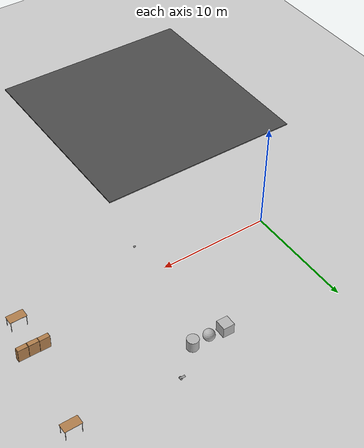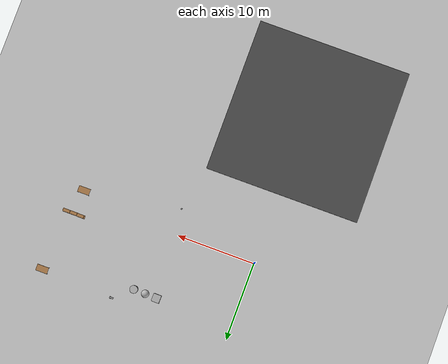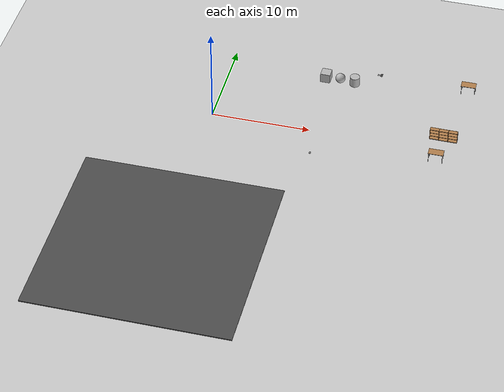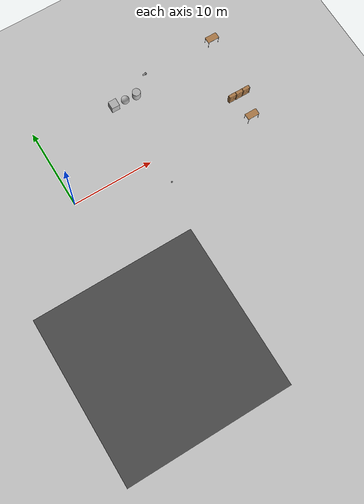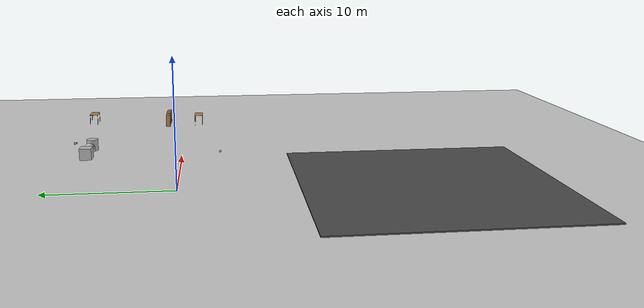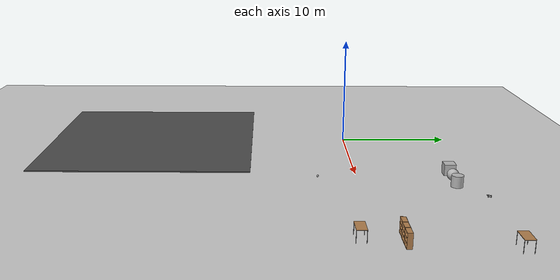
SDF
<sdf version="1.6">
 <world name="default">
  <model name="ground_plane">
   <static>1</static>
   <link name="link">
    <collision name="collision">
     <geometry><plane><normal>0 0 1</normal><size>100 100</size></plane></geometry>
     <surface>
      <contact><collide_bitmask>65535</collide_bitmask></contact>
      <friction><ode><mu>100</mu><mu2>50</mu2></ode></friction>
     </surface>
    </collision>
    <visual name="visual">
     <cast_shadows>0</cast_shadows>
     <geometry><plane><normal>0 0 1</normal><size>100 100</size></plane></geometry>
     <material>
      <script><uri>file://media/materials/scripts/gazebo.material</uri><name>Gazebo/Grey</name></script>
     </material>
    </visual>
   </link>
  </model>
  <model name="bookshelf">
   <static>1</static>
   <link name="link">
    <inertial><mass>1</mass></inertial>
    <collision name="back">
     <pose>0 0.005 0.6 0 -0 0</pose>
     <geometry><box><size>0.9 0.01 1.2</size></box></geometry>
    </collision>
    <visual name="visual1">
     <pose>0 0.005 0.6 0 -0 0</pose>
     <geometry><box><size>0.9 0.01 1.2</size></box></geometry>
     <material>
      <script><uri>file://media/materials/scripts/gazebo.material</uri><name>Gazebo/Wood</name></script>
     </material>
    </visual>
    <collision name="left_side">
     <pose>0.45 -0.195 0.6 0 -0 0</pose>
     <geometry><box><size>0.02 0.4 1.2</size></box></geometry>
    </collision>
    <visual name="visual2">
     <pose>0.45 -0.195 0.6 0 -0 0</pose>
     <geometry><box><size>0.02 0.4 1.2</size></box></geometry>
     <material>
      <script><uri>file://media/materials/scripts/gazebo.material</uri><name>Gazebo/Wood</name></script>
     </material>
    </visual>
    <collision name="right_side">
     <pose>-0.45 -0.195 0.6 0 -0 0</pose>
     <geometry><box><size>0.02 0.4 1.2</size></box></geometry>
    </collision>
    <visual name="visual3">
     <pose>-0.45 -0.195 0.6 0 -0 0</pose>
     <geometry><box><size>0.02 0.4 1.2</size></box></geometry>
     <material>
      <script><uri>file://media/materials/scripts/gazebo.material</uri><name>Gazebo/Wood</name></script>
     </material>
    </visual>
    <collision name="bottom">
     <pose>0 -0.195 0.03 0 -0 0</pose>
     <geometry><box><size>0.88 0.4 0.06</size></box></geometry>
    </collision>
    <visual name="visual4">
     <pose>0 -0.195 0.03 0 -0 0</pose>
     <geometry><box><size>0.88 0.4 0.06</size></box></geometry>
     <material>
      <script><uri>file://media/materials/scripts/gazebo.material</uri><name>Gazebo/Wood</name></script>
     </material>
    </visual>
    <collision name="top">
     <pose>0 -0.195 1.19 0 -0 0</pose>
     <geometry><box><size>0.88 0.4 0.02</size></box></geometry>
    </collision>
    <visual name="visual5">
     <pose>0 -0.195 1.19 0 -0 0</pose>
     <geometry><box><size>0.88 0.4 0.02</size></box></geometry>
     <material>
      <script><uri>file://media/materials/scripts/gazebo.material</uri><name>Gazebo/Wood</name></script>
     </material>
    </visual>
    <collision name="low_shelf">
     <pose>0 -0.195 0.43 0 -0 0</pose>
     <geometry><box><size>0.88 0.4 0.02</size></box></geometry>
    </collision>
    <visual name="visual6">
     <pose>0 -0.195 0.43 0 -0 0</pose>
     <geometry><box><size>0.88 0.4 0.02</size></box></geometry>
     <material>
      <script><uri>file://media/materials/scripts/gazebo.material</uri><name>Gazebo/Wood</name></script>
     </material>
    </visual>
    <collision name="high_shelf">
     <pose>0 -0.195 0.8 0 -0 0</pose>
     <geometry><box><size>0.88 0.4 0.02</size></box></geometry>
    </collision>
    <visual name="visual7">
     <pose>0 -0.195 0.8 0 -0 0</pose>
     <geometry><box><size>0.88 0.4 0.02</size></box></geometry>
     <material>
      <script><uri>file://media/materials/scripts/gazebo.material</uri><name>Gazebo/Wood</name></script>
     </material>
    </visual>
   </link>
   <pose>22.2279 2.02844 0 0 -0 0</pose>
  </model>
  <model name="bookshelf_clone">
   <static>1</static>
   <link name="link">
    <inertial><mass>1</mass></inertial>
    <collision name="back">
     <pose>0 0.005 0.6 0 -0 0</pose>
     <geometry><box><size>0.9 0.01 1.2</size></box></geometry>
    </collision>
    <visual name="visual1">
     <pose>0 0.005 0.6 0 -0 0</pose>
     <geometry><box><size>0.9 0.01 1.2</size></box></geometry>
     <material>
      <script><uri>file://media/materials/scripts/gazebo.material</uri><name>Gazebo/Wood</name></script>
     </material>
    </visual>
    <collision name="left_side">
     <pose>0.45 -0.195 0.6 0 -0 0</pose>
     <geometry><box><size>0.02 0.4 1.2</size></box></geometry>
    </collision>
    <visual name="visual2">
     <pose>0.45 -0.195 0.6 0 -0 0</pose>
     <geometry><box><size>0.02 0.4 1.2</size></box></geometry>
     <material>
      <script><uri>file://media/materials/scripts/gazebo.material</uri><name>Gazebo/Wood</name></script>
     </material>
    </visual>
    <collision name="right_side">
     <pose>-0.45 -0.195 0.6 0 -0 0</pose>
     <geometry><box><size>0.02 0.4 1.2</size></box></geometry>
    </collision>
    <visual name="visual3">
     <pose>-0.45 -0.195 0.6 0 -0 0</pose>
     <geometry><box><size>0.02 0.4 1.2</size></box></geometry>
     <material>
      <script><uri>file://media/materials/scripts/gazebo.material</uri><name>Gazebo/Wood</name></script>
     </material>
    </visual>
    <collision name="bottom">
     <pose>0 -0.195 0.03 0 -0 0</pose>
     <geometry><box><size>0.88 0.4 0.06</size></box></geometry>
    </collision>
    <visual name="visual4">
     <pose>0 -0.195 0.03 0 -0 0</pose>
     <geometry><box><size>0.88 0.4 0.06</size></box></geometry>
     <material>
      <script><uri>file://media/materials/scripts/gazebo.material</uri><name>Gazebo/Wood</name></script>
     </material>
    </visual>
    <collision name="top">
     <pose>0 -0.195 1.19 0 -0 0</pose>
     <geometry><box><size>0.88 0.4 0.02</size></box></geometry>
    </collision>
    <visual name="visual5">
     <pose>0 -0.195 1.19 0 -0 0</pose>
     <geometry><box><size>0.88 0.4 0.02</size></box></geometry>
     <material>
      <script><uri>file://media/materials/scripts/gazebo.material</uri><name>Gazebo/Wood</name></script>
     </material>
    </visual>
    <collision name="low_shelf">
     <pose>0 -0.195 0.43 0 -0 0</pose>
     <geometry><box><size>0.88 0.4 0.02</size></box></geometry>
    </collision>
    <visual name="visual6">
     <pose>0 -0.195 0.43 0 -0 0</pose>
     <geometry><box><size>0.88 0.4 0.02</size></box></geometry>
     <material>
      <script><uri>file://media/materials/scripts/gazebo.material</uri><name>Gazebo/Wood</name></script>
     </material>
    </visual>
    <collision name="high_shelf">
     <pose>0 -0.195 0.8 0 -0 0</pose>
     <geometry><box><size>0.88 0.4 0.02</size></box></geometry>
    </collision>
    <visual name="visual7">
     <pose>0 -0.195 0.8 0 -0 0</pose>
     <geometry><box><size>0.88 0.4 0.02</size></box></geometry>
     <material>
      <script><uri>file://media/materials/scripts/gazebo.material</uri><name>Gazebo/Wood</name></script>
     </material>
    </visual>
   </link>
   <pose>23.1399 2.00474 0 0 -0 0</pose>
  </model>
  <model name="bookshelf_clone_0">
   <static>1</static>
   <link name="link">
    <inertial><mass>1</mass></inertial>
    <collision name="back">
     <pose>0 0.005 0.6 0 -0 0</pose>
     <geometry><box><size>0.9 0.01 1.2</size></box></geometry>
    </collision>
    <visual name="visual1">
     <pose>0 0.005 0.6 0 -0 0</pose>
     <geometry><box><size>0.9 0.01 1.2</size></box></geometry>
     <material>
      <script><uri>file://media/materials/scripts/gazebo.material</uri><name>Gazebo/Wood</name></script>
     </material>
    </visual>
    <collision name="left_side">
     <pose>0.45 -0.195 0.6 0 -0 0</pose>
     <geometry><box><size>0.02 0.4 1.2</size></box></geometry>
    </collision>
    <visual name="visual2">
     <pose>0.45 -0.195 0.6 0 -0 0</pose>
     <geometry><box><size>0.02 0.4 1.2</size></box></geometry>
     <material>
      <script><uri>file://media/materials/scripts/gazebo.material</uri><name>Gazebo/Wood</name></script>
     </material>
    </visual>
    <collision name="right_side">
     <pose>-0.45 -0.195 0.6 0 -0 0</pose>
     <geometry><box><size>0.02 0.4 1.2</size></box></geometry>
    </collision>
    <visual name="visual3">
     <pose>-0.45 -0.195 0.6 0 -0 0</pose>
     <geometry><box><size>0.02 0.4 1.2</size></box></geometry>
     <material>
      <script><uri>file://media/materials/scripts/gazebo.material</uri><name>Gazebo/Wood</name></script>
     </material>
    </visual>
    <collision name="bottom">
     <pose>0 -0.195 0.03 0 -0 0</pose>
     <geometry><box><size>0.88 0.4 0.06</size></box></geometry>
    </collision>
    <visual name="visual4">
     <pose>0 -0.195 0.03 0 -0 0</pose>
     <geometry><box><size>0.88 0.4 0.06</size></box></geometry>
     <material>
      <script><uri>file://media/materials/scripts/gazebo.material</uri><name>Gazebo/Wood</name></script>
     </material>
    </visual>
    <collision name="top">
     <pose>0 -0.195 1.19 0 -0 0</pose>
     <geometry><box><size>0.88 0.4 0.02</size></box></geometry>
    </collision>
    <visual name="visual5">
     <pose>0 -0.195 1.19 0 -0 0</pose>
     <geometry><box><size>0.88 0.4 0.02</size></box></geometry>
     <material>
      <script><uri>file://media/materials/scripts/gazebo.material</uri><name>Gazebo/Wood</name></script>
     </material>
    </visual>
    <collision name="low_shelf">
     <pose>0 -0.195 0.43 0 -0 0</pose>
     <geometry><box><size>0.88 0.4 0.02</size></box></geometry>
    </collision>
    <visual name="visual6">
     <pose>0 -0.195 0.43 0 -0 0</pose>
     <geometry><box><size>0.88 0.4 0.02</size></box></geometry>
     <material>
      <script><uri>file://media/materials/scripts/gazebo.material</uri><name>Gazebo/Wood</name></script>
     </material>
    </visual>
    <collision name="high_shelf">
     <pose>0 -0.195 0.8 0 -0 0</pose>
     <geometry><box><size>0.88 0.4 0.02</size></box></geometry>
    </collision>
    <visual name="visual7">
     <pose>0 -0.195 0.8 0 -0 0</pose>
     <geometry><box><size>0.88 0.4 0.02</size></box></geometry>
     <material>
      <script><uri>file://media/materials/scripts/gazebo.material</uri><name>Gazebo/Wood</name></script>
     </material>
    </visual>
   </link>
   <pose>24.0683 2.00615 0 0 -0 0</pose>
  </model>
  <model name="asphalt_plane">
   <static>1</static>
   <link name="link">
    <collision name="collision"><geometry><box><size>20 20 0.1</size></box></geometry></collision>
    <visual name="visual">
     <cast_shadows>0</cast_shadows>
     <geometry><box><size>20 20 0.1</size></box></geometry>
     <material>
      <script>
       <uri>model://asphalt_plane/materials/scripts</uri>
       <uri>model://asphalt_plane/materials/textures</uri>
       <name>vrc/asphalt</name>
      </script>
     </material>
    </visual>
   </link>
   <pose>-0.35184 -19.1986 0 0 -0 0</pose>
  </model>
  <model name="textured_shapes">
   <pose>11.3674 8.11183 0.5 0 -0 -1.59435</pose>
   <link name="box">
    <pose>0 -1.5 0 0 -0 0</pose>
    <collision name="collision"><geometry><box><size>1 1 1</size></box></geometry></collision>
    <visual name="visual">
     <geometry><box><size>1 1 1</size></box></geometry>
     <material>
      <script>
       <uri>model://textured_shapes/materials/scripts</uri>
       <uri>model://textured_shapes/materials/textures</uri>
       <name>TexturedShape/Squares</name>
      </script>
     </material>
    </visual>
    <inertial>
     <inertia><ixx>1</ixx><ixy>0</ixy><ixz>0</ixz><iyy>1</iyy><iyz>0</iyz><izz>1</izz></inertia>
     <mass>1</mass>
    </inertial>
   </link>
   <link name="sphere">
    <collision name="collision"><geometry><sphere><radius>0.5</radius></sphere></geometry></collision>
    <visual name="visual">
     <geometry><sphere><radius>0.5</radius></sphere></geometry>
     <material>
      <script>
       <uri>model://textured_shapes/materials/scripts</uri>
       <uri>model://textured_shapes/materials/textures</uri>
       <name>TexturedShape/Squares</name>
      </script>
     </material>
    </visual>
    <inertial>
     <inertia><ixx>1</ixx><ixy>0</ixy><ixz>0</ixz><iyy>1</iyy><iyz>0</iyz><izz>1</izz></inertia>
     <mass>1</mass>
    </inertial>
   </link>
   <link name="cylinder">
    <pose>0 1.5 0 0 -0 0</pose>
    <collision name="collision">
     <geometry><cylinder><radius>0.5</radius><length>1</length></cylinder></geometry>
    </collision>
    <visual name="visual">
     <geometry><cylinder><radius>0.5</radius><length>1</length></cylinder></geometry>
     <material>
      <script>
       <uri>model://textured_shapes/materials/scripts</uri>
       <uri>model://textured_shapes/materials/textures</uri>
       <name>TexturedShape/Squares</name>
      </script>
     </material>
    </visual>
    <inertial>
     <inertia><ixx>1</ixx><ixy>0</ixy><ixz>0</ixz><iyy>1</iyy><iyz>0</iyz><izz>1</izz></inertia>
     <mass>1</mass>
    </inertial>
   </link>
  </model>
  <model name="table">
   <static>1</static>
   <link name="link">
    <collision name="surface">
     <pose>0 0 1 0 -0 0</pose>
     <geometry><box><size>1.5 0.8 0.03</size></box></geometry>
     <surface><friction><ode><mu>0.6</mu><mu2>0.6</mu2></ode></friction></surface>
    </collision>
    <visual name="visual1">
     <pose>0 0 1 0 -0 0</pose>
     <geometry><box><size>1.5 0.8 0.03</size></box></geometry>
     <material>
      <script><uri>file://media/materials/scripts/gazebo.material</uri><name>Gazebo/Wood</name></script>
     </material>
    </visual>
    <collision name="front_left_leg">
     <pose>0.68 0.38 0.5 0 -0 0</pose>
     <geometry><cylinder><radius>0.02</radius><length>1</length></cylinder></geometry>
    </collision>
    <visual name="front_left_leg">
     <pose>0.68 0.38 0.5 0 -0 0</pose>
     <geometry><cylinder><radius>0.02</radius><length>1</length></cylinder></geometry>
     <material>
      <script><uri>file://media/materials/scripts/gazebo.material</uri><name>Gazebo/Grey</name></script>
     </material>
    </visual>
    <collision name="front_right_leg">
     <pose>0.68 -0.38 0.5 0 -0 0</pose>
     <geometry><cylinder><radius>0.02</radius><length>1</length></cylinder></geometry>
    </collision>
    <visual name="front_right_leg">
     <pose>0.68 -0.38 0.5 0 -0 0</pose>
     <geometry><cylinder><radius>0.02</radius><length>1</length></cylinder></geometry>
     <material>
      <script><uri>file://media/materials/scripts/gazebo.material</uri><name>Gazebo/Grey</name></script>
     </material>
    </visual>
    <collision name="back_right_leg">
     <pose>-0.68 -0.38 0.5 0 -0 0</pose>
     <geometry><cylinder><radius>0.02</radius><length>1</length></cylinder></geometry>
    </collision>
    <visual name="back_right_leg">
     <pose>-0.68 -0.38 0.5 0 -0 0</pose>
     <geometry><cylinder><radius>0.02</radius><length>1</length></cylinder></geometry>
     <material>
      <script><uri>file://media/materials/scripts/gazebo.material</uri><name>Gazebo/Grey</name></script>
     </material>
    </visual>
    <collision name="back_left_leg">
     <pose>-0.68 0.38 0.5 0 -0 0</pose>
     <geometry><cylinder><radius>0.02</radius><length>1</length></cylinder></geometry>
    </collision>
    <visual name="back_left_leg">
     <pose>-0.68 0.38 0.5 0 -0 0</pose>
     <geometry><cylinder><radius>0.02</radius><length>1</length></cylinder></geometry>
     <material>
      <script><uri>file://media/materials/scripts/gazebo.material</uri><name>Gazebo/Grey</name></script>
     </material>
    </visual>
   </link>
   <pose>24.3321 9.59008 0 0 -0 0</pose>
  </model>
  <model name="table_clone">
   <static>1</static>
   <link name="link">
    <collision name="surface">
     <pose>0 0 1 0 -0 0</pose>
     <geometry><box><size>1.5 0.8 0.03</size></box></geometry>
     <surface><friction><ode><mu>0.6</mu><mu2>0.6</mu2></ode></friction></surface>
    </collision>
    <visual name="visual1">
     <pose>0 0 1 0 -0 0</pose>
     <geometry><box><size>1.5 0.8 0.03</size></box></geometry>
     <material>
      <script><uri>file://media/materials/scripts/gazebo.material</uri><name>Gazebo/Wood</name></script>
     </material>
    </visual>
    <collision name="front_left_leg">
     <pose>0.68 0.38 0.5 0 -0 0</pose>
     <geometry><cylinder><radius>0.02</radius><length>1</length></cylinder></geometry>
    </collision>
    <visual name="front_left_leg">
     <pose>0.68 0.38 0.5 0 -0 0</pose>
     <geometry><cylinder><radius>0.02</radius><length>1</length></cylinder></geometry>
     <material>
      <script><uri>file://media/materials/scripts/gazebo.material</uri><name>Gazebo/Grey</name></script>
     </material>
    </visual>
    <collision name="front_right_leg">
     <pose>0.68 -0.38 0.5 0 -0 0</pose>
     <geometry><cylinder><radius>0.02</radius><length>1</length></cylinder></geometry>
    </collision>
    <visual name="front_right_leg">
     <pose>0.68 -0.38 0.5 0 -0 0</pose>
     <geometry><cylinder><radius>0.02</radius><length>1</length></cylinder></geometry>
     <material>
      <script><uri>file://media/materials/scripts/gazebo.material</uri><name>Gazebo/Grey</name></script>
     </material>
    </visual>
    <collision name="back_right_leg">
     <pose>-0.68 -0.38 0.5 0 -0 0</pose>
     <geometry><cylinder><radius>0.02</radius><length>1</length></cylinder></geometry>
    </collision>
    <visual name="back_right_leg">
     <pose>-0.68 -0.38 0.5 0 -0 0</pose>
     <geometry><cylinder><radius>0.02</radius><length>1</length></cylinder></geometry>
     <material>
      <script><uri>file://media/materials/scripts/gazebo.material</uri><name>Gazebo/Grey</name></script>
     </material>
    </visual>
    <collision name="back_left_leg">
     <pose>-0.68 0.38 0.5 0 -0 0</pose>
     <geometry><cylinder><radius>0.02</radius><length>1</length></cylinder></geometry>
    </collision>
    <visual name="back_left_leg">
     <pose>-0.68 0.38 0.5 0 -0 0</pose>
     <geometry><cylinder><radius>0.02</radius><length>1</length></cylinder></geometry>
     <material>
      <script><uri>file://media/materials/scripts/gazebo.material</uri><name>Gazebo/Grey</name></script>
     </material>
    </visual>
   </link>
   <pose>22.9231 -1.27936 0 0 -0 0</pose>
  </model>
  <model name="BaseModel_0">
   <link name="link_0_clone">
    <inertial>
     <mass>1</mass>
     <inertia><ixx>0.145833</ixx><ixy>0</ixy><ixz>0</ixz><iyy>0.145833</iyy><iyz>0</iyz><izz>0.125</izz></inertia>
    </inertial>
    <pose>0.282441 0.145774 0.01125 1.57 -0 0</pose>
    <visual name="visual">
     <geometry><cylinder><radius>0.1</radius><length>0.025</length></cylinder></geometry>
     <material>
      <lighting>1</lighting>
      <script><uri>file://media/materials/scripts/gazebo.material</uri><name>Gazebo/Grey</name></script>
      <shader type="pixel"><normal_map>__default__</normal_map></shader>
      <ambient>0.3 0.3 0.3 1</ambient>
      <diffuse>0.7 0.7 0.7 1</diffuse>
      <specular>0.01 0.01 0.01 1</specular>
      <emissive>0 0 0 1</emissive>
     </material>
    </visual>
    <collision name="collision">
     <geometry><cylinder><radius>0.1</radius><length>0.025</length></cylinder></geometry>
     <surface>
      <friction>
       <ode><mu>1</mu><mu2>1</mu2><fdir1>0 0 0</fdir1><slip1>0</slip1><slip2>0</slip2></ode>
       <torsional>
        <coefficient>1</coefficient>
        <patch_radius>0</patch_radius>
        <surface_radius>0</surface_radius>
        <use_patch_radius>1</use_patch_radius>
        <ode><slip>0</slip></ode>
       </torsional>
      </friction>
      <bounce><restitution_coefficient>0</restitution_coefficient><threshold>1e+06</threshold></bounce>
      <contact>
       <collide_without_contact>0</collide_without_contact>
       <collide_without_contact_bitmask>1</collide_without_contact_bitmask>
       <collide_bitmask>1</collide_bitmask>
       <ode>
        <soft_cfm>0</soft_cfm>
        <soft_erp>0.2</soft_erp>
        <kp>1e+13</kp>
        <kd>1</kd>
        <max_vel>0.01</max_vel>
        <min_depth>0</min_depth>
       </ode>
       <bullet>
        <split_impulse>1</split_impulse>
        <split_impulse_penetration_threshold>-0.01</split_impulse_penetration_threshold>
        <soft_cfm>0</soft_cfm>
        <soft_erp>0.2</soft_erp>
        <kp>1e+13</kp>
        <kd>1</kd>
       </bullet>
      </contact>
     </surface>
    </collision>
   </link>
   <link name="link_0_clone_0">
    <inertial>
     <mass>1</mass>
     <inertia><ixx>0.145833</ixx><ixy>0</ixy><ixz>0</ixz><iyy>0.145833</iyy><iyz>0</iyz><izz>0.125</izz></inertia>
    </inertial>
    <pose>0.282441 0.370933 0.01125 1.57 -0 0</pose>
    <visual name="visual">
     <geometry><cylinder><radius>0.1</radius><length>0.025</length></cylinder></geometry>
     <material>
      <lighting>1</lighting>
      <script><uri>file://media/materials/scripts/gazebo.material</uri><name>Gazebo/Grey</name></script>
      <shader type="pixel"><normal_map>__default__</normal_map></shader>
      <ambient>0.3 0.3 0.3 1</ambient>
      <diffuse>0.7 0.7 0.7 1</diffuse>
      <specular>0.01 0.01 0.01 1</specular>
      <emissive>0 0 0 1</emissive>
     </material>
    </visual>
    <collision name="collision">
     <geometry><cylinder><radius>0.1</radius><length>0.025</length></cylinder></geometry>
     <surface>
      <friction>
       <ode><mu>1</mu><mu2>1</mu2><fdir1>0 0 0</fdir1><slip1>0</slip1><slip2>0</slip2></ode>
       <torsional>
        <coefficient>1</coefficient>
        <patch_radius>0</patch_radius>
        <surface_radius>0</surface_radius>
        <use_patch_radius>1</use_patch_radius>
        <ode><slip>0</slip></ode>
       </torsional>
      </friction>
      <bounce><restitution_coefficient>0</restitution_coefficient><threshold>1e+06</threshold></bounce>
      <contact>
       <collide_without_contact>0</collide_without_contact>
       <collide_without_contact_bitmask>1</collide_without_contact_bitmask>
       <collide_bitmask>1</collide_bitmask>
       <ode>
        <soft_cfm>0</soft_cfm>
        <soft_erp>0.2</soft_erp>
        <kp>1e+13</kp>
        <kd>1</kd>
        <max_vel>0.01</max_vel>
        <min_depth>0</min_depth>
       </ode>
       <bullet>
        <split_impulse>1</split_impulse>
        <split_impulse_penetration_threshold>-0.01</split_impulse_penetration_threshold>
        <soft_cfm>0</soft_cfm>
        <soft_erp>0.2</soft_erp>
        <kp>1e+13</kp>
        <kd>1</kd>
       </bullet>
      </contact>
     </surface>
    </collision>
   </link>
   <link name="link_1_clone">
    <inertial>
     <mass>1</mass>
     <inertia><ixx>0.1</ixx><ixy>0</ixy><ixz>0</ixz><iyy>0.1</iyy><iyz>0</iyz><izz>0.1</izz></inertia>
    </inertial>
    <pose>-0.077559 0.258354 -0.03375 0 -0 0</pose>
    <visual name="visual">
     <geometry><sphere><radius>0.04</radius></sphere></geometry>
     <material>
      <lighting>1</lighting>
      <script><uri>file://media/materials/scripts/gazebo.material</uri><name>Gazebo/Grey</name></script>
      <shader type="pixel"><normal_map>__default__</normal_map></shader>
      <ambient>0.3 0.3 0.3 1</ambient>
      <diffuse>0.7 0.7 0.7 1</diffuse>
      <specular>0.01 0.01 0.01 1</specular>
      <emissive>0 0 0 1</emissive>
     </material>
    </visual>
    <collision name="collision">
     <geometry><sphere><radius>0.04</radius></sphere></geometry>
     <surface>
      <friction>
       <ode><mu>1</mu><mu2>1</mu2><fdir1>0 0 0</fdir1><slip1>0</slip1><slip2>0</slip2></ode>
       <torsional>
        <coefficient>1</coefficient>
        <patch_radius>0</patch_radius>
        <surface_radius>0</surface_radius>
        <use_patch_radius>1</use_patch_radius>
        <ode><slip>0</slip></ode>
       </torsional>
      </friction>
      <bounce><restitution_coefficient>0</restitution_coefficient><threshold>1e+06</threshold></bounce>
      <contact>
       <collide_without_contact>0</collide_without_contact>
       <collide_without_contact_bitmask>1</collide_without_contact_bitmask>
       <collide_bitmask>1</collide_bitmask>
       <ode>
        <soft_cfm>0</soft_cfm>
        <soft_erp>0.2</soft_erp>
        <kp>1e+13</kp>
        <kd>1</kd>
        <max_vel>0.01</max_vel>
        <min_depth>0</min_depth>
       </ode>
       <bullet>
        <split_impulse>1</split_impulse>
        <split_impulse_penetration_threshold>-0.01</split_impulse_penetration_threshold>
        <soft_cfm>0</soft_cfm>
        <soft_erp>0.2</soft_erp>
        <kp>1e+13</kp>
        <kd>1</kd>
       </bullet>
      </contact>
     </surface>
    </collision>
   </link>
   <link name="link_2_clone">
    <inertial>
     <mass>1</mass>
     <inertia>
      <ixx>0.166667</ixx>
      <ixy>0</ixy>
      <ixz>0</ixz>
      <iyy>0.166667</iyy>
      <iyz>0</iyz>
      <izz>0.166667</izz>
     </inertia>
    </inertial>
    <pose>0.132441 0.258354 0.01125 0 -0 0</pose>
    <visual name="visual">
     <geometry><box><size>0.5 0.2 0.01</size></box></geometry>
     <material>
      <lighting>1</lighting>
      <script><uri>file://media/materials/scripts/gazebo.material</uri><name>Gazebo/Grey</name></script>
      <shader type="pixel"><normal_map>__default__</normal_map></shader>
      <ambient>0.3 0.3 0.3 1</ambient>
      <diffuse>0.7 0.7 0.7 1</diffuse>
      <specular>0.01 0.01 0.01 1</specular>
      <emissive>0 0 0 1</emissive>
     </material>
    </visual>
    <collision name="collision">
     <geometry><box><size>0.5 0.2 0.01</size></box></geometry>
     <surface>
      <friction>
       <ode><mu>1</mu><mu2>1</mu2><fdir1>0 0 0</fdir1><slip1>0</slip1><slip2>0</slip2></ode>
       <torsional>
        <coefficient>1</coefficient>
        <patch_radius>0</patch_radius>
        <surface_radius>0</surface_radius>
        <use_patch_radius>1</use_patch_radius>
        <ode><slip>0</slip></ode>
       </torsional>
      </friction>
      <bounce><restitution_coefficient>0</restitution_coefficient><threshold>1e+06</threshold></bounce>
      <contact>
       <collide_without_contact>0</collide_without_contact>
       <collide_without_contact_bitmask>1</collide_without_contact_bitmask>
       <collide_bitmask>1</collide_bitmask>
       <ode>
        <soft_cfm>0</soft_cfm>
        <soft_erp>0.2</soft_erp>
        <kp>1e+13</kp>
        <kd>1</kd>
        <max_vel>0.01</max_vel>
        <min_depth>0</min_depth>
       </ode>
       <bullet>
        <split_impulse>1</split_impulse>
        <split_impulse_penetration_threshold>-0.01</split_impulse_penetration_threshold>
        <soft_cfm>0</soft_cfm>
        <soft_erp>0.2</soft_erp>
        <kp>1e+13</kp>
        <kd>1</kd>
       </bullet>
      </contact>
     </surface>
    </collision>
   </link>
   <joint name="link_2_clone_JOINT_0" type="revolute">
    <parent>link_2_clone</parent>
    <child>link_0_clone_0</child>
    <axis>
     <xyz>1 0 0</xyz>
     <use_parent_model_frame>0</use_parent_model_frame>
     <limit>
      <lower>-1.79769e+308</lower>
      <upper>1.79769e+308</upper>
      <effort>-1</effort>
      <velocity>-1</velocity>
     </limit>
     <dynamics>
      <spring_reference>0</spring_reference>
      <spring_stiffness>0</spring_stiffness>
      <damping>0</damping>
     </dynamics>
    </axis>
    <physics>
     <ode><limit><cfm>0</cfm><erp>0.2</erp></limit><suspension><cfm>0</cfm><erp>0.2</erp></suspension></ode>
    </physics>
   </joint>
   <joint name="link_2_clone_JOINT_1" type="revolute">
    <parent>link_2_clone</parent>
    <child>link_0_clone</child>
    <axis>
     <xyz>1 0 0</xyz>
     <use_parent_model_frame>0</use_parent_model_frame>
     <limit>
      <lower>-1.79769e+308</lower>
      <upper>1.79769e+308</upper>
      <effort>-1</effort>
      <velocity>-1</velocity>
     </limit>
     <dynamics>
      <spring_reference>0</spring_reference>
      <spring_stiffness>0</spring_stiffness>
      <damping>0</damping>
     </dynamics>
    </axis>
    <physics>
     <ode><limit><cfm>0</cfm><erp>0.2</erp></limit><suspension><cfm>0</cfm><erp>0.2</erp></suspension></ode>
    </physics>
   </joint>
   <joint name="link_2_clone_JOINT_2" type="ball">
    <parent>link_2_clone</parent>
    <child>link_1_clone</child>
    <physics>
     <ode><limit><cfm>0</cfm><erp>0.2</erp></limit><suspension><cfm>0</cfm><erp>0.2</erp></suspension></ode>
    </physics>
   </joint>
   <static>0</static>
   <pose>15.0299 9.76725 0.076844 0.000801 -0.041788 0.025411</pose>
  </model>
  <model name="my_ball">
   <link name="link_0">
    <inertial>
     <mass>1</mass>
     <inertia><ixx>0.1</ixx><ixy>0</ixy><ixz>0</ixz><iyy>0.1</iyy><iyz>0</iyz><izz>0.1</izz></inertia>
    </inertial>
    <visual name="visual">
     <geometry><sphere><radius>0.1</radius></sphere></geometry>
     <material>
      <lighting>1</lighting>
      <script><uri>file://media/materials/scripts/gazebo.material</uri><name>Gazebo/Grey</name></script>
      <shader type="pixel"><normal_map>__default__</normal_map></shader>
      <ambient>1 1 1 1</ambient>
      <diffuse>1 1 1 1</diffuse>
      <specular>1 1 1 1</specular>
      <emissive>1 1 1 1</emissive>
     </material>
    </visual>
    <collision name="collision">
     <geometry><sphere><radius>0.1</radius></sphere></geometry>
     <surface>
      <friction>
       <ode><mu>1</mu><mu2>1</mu2><fdir1>0 0 0</fdir1><slip1>0</slip1><slip2>0</slip2></ode>
       <torsional>
        <coefficient>1</coefficient>
        <patch_radius>0</patch_radius>
        <surface_radius>0</surface_radius>
        <use_patch_radius>1</use_patch_radius>
        <ode><slip>0</slip></ode>
       </torsional>
      </friction>
      <bounce><restitution_coefficient>0</restitution_coefficient><threshold>1e+06</threshold></bounce>
      <contact>
       <collide_without_contact>0</collide_without_contact>
       <collide_without_contact_bitmask>1</collide_without_contact_bitmask>
       <collide_bitmask>1</collide_bitmask>
       <ode>
        <soft_cfm>0</soft_cfm>
        <soft_erp>0.2</soft_erp>
        <kp>1e+13</kp>
        <kd>1</kd>
        <max_vel>0.01</max_vel>
        <min_depth>0</min_depth>
       </ode>
       <bullet>
        <split_impulse>1</split_impulse>
        <split_impulse_penetration_threshold>-0.01</split_impulse_penetration_threshold>
        <soft_cfm>0</soft_cfm>
        <soft_erp>0.2</soft_erp>
        <kp>1e+13</kp>
        <kd>1</kd>
       </bullet>
      </contact>
     </surface>
    </collision>
   </link>
   <static>0</static>
   <pose>10.7952 -3.34455 0.1 0 -0 0</pose>
  </model>
 </world>
</sdf>
